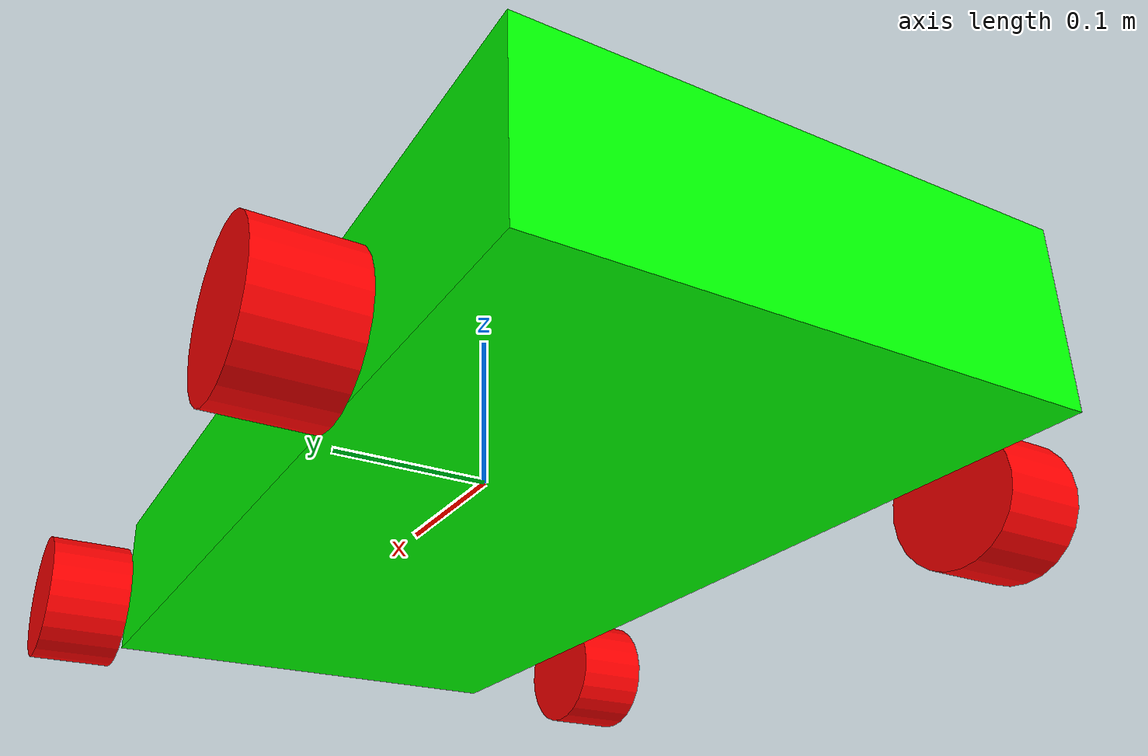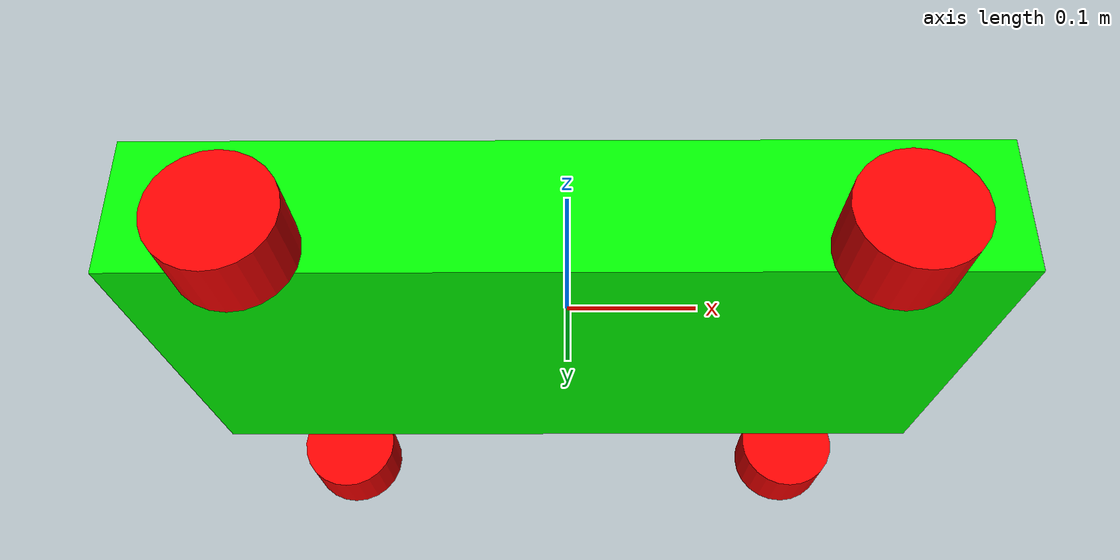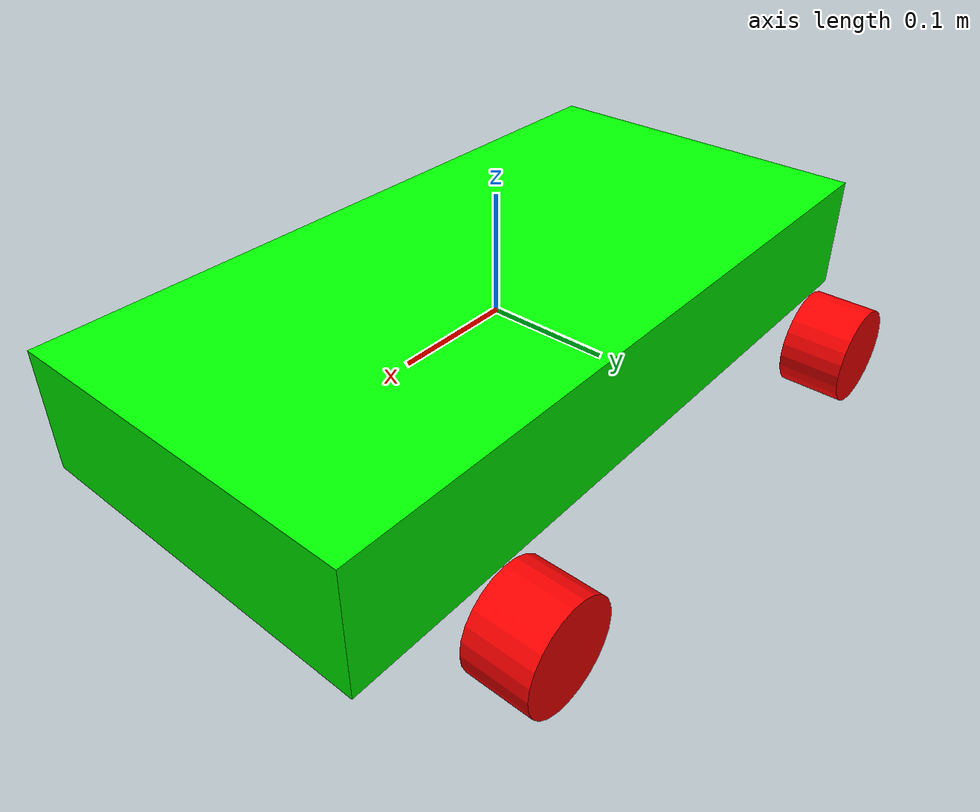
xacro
<?xml version="1.0"?>
<robot xmlns:xacro="http://www.ros.org/wiki/xacro" name="bot">

  <!-- Параметры -->
  <xacro:property name="wheel_radius" value="0.04" />
  <xacro:property name="wheel_length" value="0.05" />
  <xacro:property name="wheel_color_name" value="red" />
  <xacro:property name="wheel_color_rgb" value="1 0 0 1" />

  <!-- Макросы -->
  <xacro:macro name="wheel" params="wheel_name">
    <link name="${wheel_name}">
      <visual>
        <geometry>
          <cylinder radius="${wheel_radius}" length="${wheel_length}" />
        </geometry>
        <material name="${wheel_color_name}">
          <color rgba="${wheel_color_rgb}"/>
        </material>
      </visual>
    </link>
  </xacro:macro>

  <xacro:macro name="box_link" params="name size color color_rgb" >
    <link name="${name}">
      <visual>
        <geometry>
          <box size="${size}"/>
        </geometry>
        <material name="${color}">
          <color rgba="${color_rgb}"/>
        </material>
      </visual>
    </link>
  </xacro:macro>

  <xacro:macro name="static_joint" params="name parent child">
    <joint name="${name}" type="fixed">
      <parent link="${parent}" />
      <child link="${child}" />
      <origin xyz="0 0 0" rpy="0 0 0"/>
    </joint>
  </xacro:macro>

  <xacro:macro name="wheel_joint" params="name parent child xyz">
    <joint name="${name}" type="continuous">
      <parent link="${parent}" />
      <child link="${child}" />
      <origin xyz="${xyz}" rpy="1.570796 0 0"/>
    </joint>
  </xacro:macro>

  <!-- Составляющие -->
  <xacro:box_link name="base_link" size="0 0 0" color="red" color_rgb="1 0 0 1" />
  <xacro:box_link name="torso" size="0.6 0.3 0.1" color="green" color_rgb="0 1 0 1" />
  <xacro:static_joint name="base_link_to_torso" parent="base_link" child="torso" />

  <!-- Колеса -->
  <xacro:wheel wheel_name="right_wheel_frontside" />
  <xacro:wheel_joint name="base_link_right_wheel_frontside" parent="base_link" child="right_wheel_frontside" xyz="0.2 -0.2 -0.05" />

  <xacro:wheel wheel_name="right_wheel_backside" />
  <xacro:wheel_joint name="base_link_right_wheel_backside" parent="base_link" child="right_wheel_backside" xyz="-0.2 -0.2 -0.05" />

  <xacro:wheel wheel_name="left_wheel_frontside" />
  <xacro:wheel_joint name="base_link_left_wheel_frontside" parent="base_link" child="left_wheel_frontside" xyz="0.2 0.2 -0.05" />

  <xacro:wheel wheel_name="left_wheel_backside" />
  <xacro:wheel_joint name="base_link_left_wheel_backside" parent="base_link" child="left_wheel_backside" xyz="-0.2 0.2 -0.05" />

</robot>
